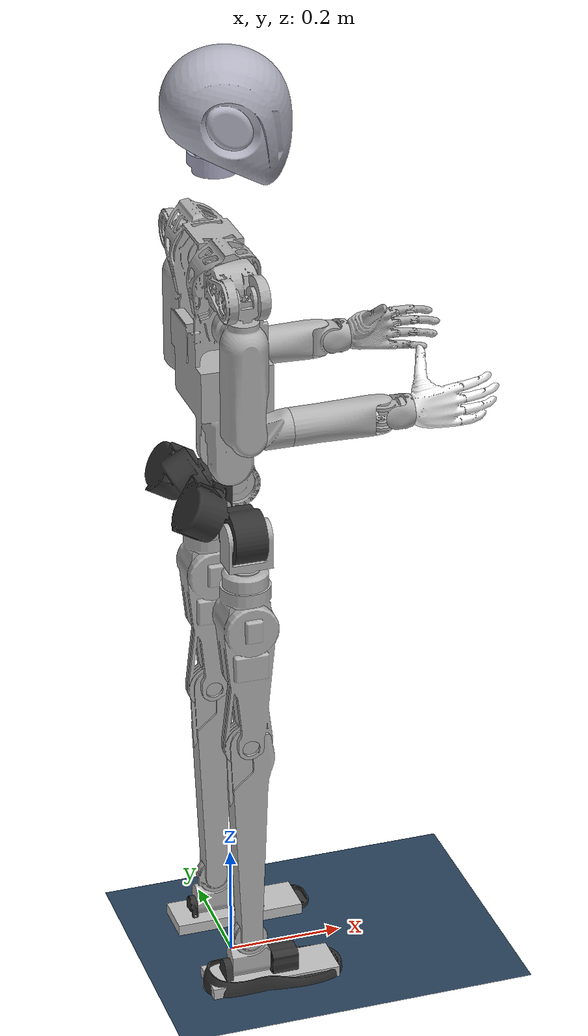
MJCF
<mujoco model="scene_f1">
  <compiler angle="radian" meshdir="./meshes/" autolimits="true"/>
  <default>
    <joint damping="0.05" armature="0.01" frictionloss="0.2"/>
  </default>

  <asset>
    <material name="silver" rgba="0.7 0.7 0.7 1"/>
    <material name="black" rgba="0.2 0.2 0.2 1"/>

    <mesh name="pelvis" file="pelvis.STL"/>
    <mesh name="left_hip_pitch_link" file="left_hip_pitch_link.STL"/>
    <mesh name="left_hip_roll_link" file="left_hip_roll_link.STL"/>
    <mesh name="left_hip_yaw_link" file="left_hip_yaw_link.STL"/>
    <mesh name="left_knee_link" file="left_knee_link.STL"/>
    <mesh name="left_ankle_pitch_link" file="left_ankle_pitch_link.STL"/>
    <mesh name="left_ankle_roll_link" file="left_ankle_roll_link.STL"/>
    <mesh name="right_hip_pitch_link" file="right_hip_pitch_link.STL"/>
    <mesh name="right_hip_roll_link" file="right_hip_roll_link.STL"/>
    <mesh name="right_hip_yaw_link" file="right_hip_yaw_link.STL"/>
    <mesh name="right_knee_link" file="right_knee_link.STL"/>
    <mesh name="right_ankle_pitch_link" file="right_ankle_pitch_link.STL"/>
    <mesh name="right_ankle_roll_link" file="right_ankle_roll_link.STL"/>
    <mesh name="waist_yaw_link" file="waist_yaw_link.STL"/>
    <mesh name="waist_roll_link" file="waist_roll_link.STL"/>
    <mesh name="torso_link" file="torso_link.STL"/>
    <mesh name="left_shoulder_pitch_link" file="left_shoulder_pitch_link.STL"/>
    <mesh name="left_shoulder_roll_link" file="left_shoulder_roll_link.STL"/>
    <mesh name="left_shoulder_yaw_link" file="left_shoulder_yaw_link.STL"/>
    <mesh name="left_elbow_link" file="left_elbow_link.STL"/>
    <mesh name="left_wrist_roll_link_v1_1" file="left_wrist_roll_link_v1_1.STL"/>
    <mesh name="left_wrist_yaw_link_v1_1" file="left_wrist_yaw_link_v1_1.STL"/>
    <mesh name="left_wrist_pitch_link_v1_1" file="left_wrist_pitch_link_v1_1.STL"/>
    <mesh name="left_hand_link" file="left_hand_link.STL"/>
    <mesh name="right_shoulder_pitch_link" file="right_shoulder_pitch_link.STL"/>
    <mesh name="right_shoulder_roll_link" file="right_shoulder_roll_link.STL"/>
    <mesh name="right_shoulder_yaw_link" file="right_shoulder_yaw_link.STL"/>
    <mesh name="right_elbow_link" file="right_elbow_link.STL"/>
    <mesh name="right_wrist_roll_link_v1_1" file="right_wrist_roll_link_v1_1.STL"/>
    <mesh name="right_wrist_yaw_link_v1_1" file="right_wrist_yaw_link_v1_1.STL"/>
    <mesh name="right_wrist_pitch_link_v1_1" file="right_wrist_pitch_link_v1_1.STL"/>
    <mesh name="right_hand_link" file="right_hand_link.STL"/>
    <mesh name="head_yaw_link" file="head_yaw_link.STL"/>
    <mesh name="head_pitch_link" file="head_pitch_link.STL"/>
  </asset>

  <worldbody>
    <body name="pelvis" pos="0 0 0.873">
      <site name="imu" size="0.01" pos="0.0 0.0 0.0" />

      <light pos="0 0 2" mode="trackcom"/>
      <camera name="tracking" pos="1.734 -1.135 .35" xyaxes="0.552 0.834 -0.000 -0.170 0.112 0.979" mode="trackcom"/>
      <inertial pos="1.227e-05 0 0.00175202" quat="0.707113 0.707071 -0.00603929 0.00224665" mass="1.923" diaginertia="0.00328643 0.00327877 0.00187875"/>
      <joint name="floating_base_joint" type="free" limited="false" actuatorfrclimited="false"/>
      <geom type="mesh" contype="0" conaffinity="0" group="1" density="0" rgba="0.2 0.2 0.2 1" mesh="pelvis"/>
      <site name="imu_in_pelvis" size="0.005" pos="0. 0 -0.055"/>
      <body name="left_hip_pitch_link" pos="0 0.0495 0">
        <inertial pos="-0.00059823 0.053979 -0.0042224" quat="0.652315 0.75755 -0.0242065 0.00423816" mass="1.04" diaginertia="0.00138575 0.00113626 0.000872142"/>
        <joint name="left_hip_pitch_joint" pos="0 0 0" axis="0 1 0" range="-2.3562 2.3562"/>
        <geom type="mesh" contype="0" conaffinity="0" group="1" density="0" rgba="0.2 0.2 0.2 1" mesh="left_hip_pitch_link"/>
        <body name="left_hip_roll_link" pos="0 0.0555 -0.005">
          <inertial pos="0.0043213 0 -0.027634" quat="0.408553 0.57731 0.577033 0.408449" mass="0.14" diaginertia="0.00018358 0.000141244 0.000101956"/>
          <joint name="left_hip_roll_joint" axis="1 0 0" range="-0.5236 1.5708" actuatorfrcrange="-87 87"/>
          <geom type="mesh" contype="0" conaffinity="0" group="1" density="0" rgba="0.7 0.7 0.7 1" mesh="left_hip_roll_link"/>
          <geom type="mesh" rgba="0.7 0.7 0.7 1" mesh="left_hip_roll_link"/>
          <body name="left_hip_yaw_link" pos="0 0 -0.0536">
            <inertial pos="0.00010121 1.383e-05 -0.102311" quat="0.99999 0.00375205 0.0025479 0.000511966" mass="2.275" diaginertia="0.0191971 0.018658 0.00224713"/>
            <joint name="left_hip_yaw_joint" pos="0 0 0" axis="0 0 1" range="-1.8326 1.8326" actuatorfrcrange="-87 87"/>
            <geom type="mesh" contype="0" conaffinity="0" group="1" density="0" rgba="0.7 0.7 0.7 1" mesh="left_hip_yaw_link"/>
            <geom type="mesh" rgba="0.7 0.7 0.7 1" mesh="left_hip_yaw_link"/>
            <body name="left_knee_link" pos="0 0 -0.3304">
              <inertial pos="0.00334882 -0.00032247 -0.149842" quat="0.698241 -0.0104039 -0.00666549 0.715757" mass="0.635" diaginertia="0.0111018 0.0110139 0.000311373"/>
              <joint name="left_knee_joint" pos="0 0 0" axis="0 1 0" range="-0.01745 2.3562" actuatorfrcrange="-120 120"/>
              <geom type="mesh" contype="0" conaffinity="0" group="1" density="0" rgba="0.7 0.7 0.7 1" mesh="left_knee_link"/>
              <geom type="mesh" rgba="0.7 0.7 0.7 1" mesh="left_knee_link"/>
              <body name="left_ankle_pitch_link" pos="0 0 -0.39">
                <inertial pos="0.0024178 -1.256e-05 -0.0238176" quat="0.704903 0.052882 0.0527757 0.705358" mass="0.22" diaginertia="0.00023561 0.000170507 9.99229e-05"/>
                <joint name="left_ankle_pitch_joint" pos="0 0 0" axis="0 1 0" range="-0.873 1.0472" actuatorfrcrange="-89 89"/>
                <geom type="mesh" contype="0" conaffinity="0" group="1" density="0" rgba="0.7 0.7 0.7 1" mesh="left_ankle_pitch_link"/>
                <geom type="mesh" rgba="0.7 0.7 0.7 1" mesh="left_ankle_pitch_link"/>
                <body name="left_ankle_roll_link" pos="0 0 -0.058">
                  <inertial pos="0.0510876 0.00023922 -0.00447269" quat="0 0.707107 0 0.707107" mass="0.411" diaginertia="0.00047916 0.00047226 9.993e-05"/>
                  <joint name="left_ankle_roll_joint" pos="0 0 0" axis="1 0 0" range="-0.5236 0.5236"/>
                  <geom type="mesh" contype="0" conaffinity="0" group="1" density="0" rgba="0.2 0.2 0.2 1" mesh="left_ankle_roll_link"/>
                  <geom name="l_foot_collision" type="box" size="0.115 0.039 0.01" pos="0.038 0 -0.025" rgba="0.75294 0.75294 0.75294 1" condim="3" />
                </body>
              </body>
            </body>
          </body>
        </body>
      </body>
      <body name="right_hip_pitch_link" pos="0 -0.0495 0">
        <inertial pos="-0.00059823 -0.053979 -0.0042224" quat="0.75755 0.652315 -0.00423816 0.0242065" mass="1.04" diaginertia="0.00138575 0.00113626 0.000872142"/>
        <joint name="right_hip_pitch_joint" pos="0 0 0" axis="0 1 0" range="-2.3562 2.3562" actuatorfrcrange="-75 75"/>
        <geom type="mesh" contype="0" conaffinity="0" group="1" density="0" rgba="0.2 0.2 0.2 1" mesh="right_hip_pitch_link"/>
        <geom type="mesh" rgba="0.2 0.2 0.2 1" mesh="right_hip_pitch_link"/>
        <body name="right_hip_roll_link" pos="0 -0.0555 -0.005">
          <inertial pos="0.0043213 0 -0.027634" quat="0.408553 0.57731 0.577033 0.408449" mass="0.14" diaginertia="0.00018358 0.000141244 0.000101956"/>
          <joint name="right_hip_roll_joint" pos="0 0 0" axis="1 0 0" range="-1.5708 0.5236" actuatorfrcrange="-87 87"/>
          <geom type="mesh" contype="0" conaffinity="0" group="1" density="0" rgba="0.7 0.7 0.7 1" mesh="right_hip_roll_link"/>
          <geom type="mesh" rgba="0.7 0.7 0.7 1" mesh="right_hip_roll_link"/>
          <body name="right_hip_yaw_link" pos="0 0 -0.0536">
            <inertial pos="0.00028095 -0.00037298 -0.102311" quat="0.999997 0.00155532 0.00134116 0.00120674" mass="2.275" diaginertia="0.0191961 0.0186572 0.00224772"/>
            <joint name="right_hip_yaw_joint" pos="0 0 0" axis="0 0 1" range="-1.8326 1.8326" actuatorfrcrange="-87 87"/>
            <geom type="mesh" contype="0" conaffinity="0" group="1" density="0" rgba="0.7 0.7 0.7 1" mesh="right_hip_yaw_link"/>
            <geom type="mesh" rgba="0.7 0.7 0.7 1" mesh="right_hip_yaw_link"/>
            <body name="right_knee_link" pos="0 0 -0.3304">
              <inertial pos="0.0033489 -0.00032248 -0.14984" quat="0.715839 -0.00666391 -0.0104045 0.698156" mass="0.635" diaginertia="0.0111013 0.0110142 0.000311373"/>
              <joint name="right_knee_joint" pos="0 0 0" axis="0 1 0" range="-0.01745 2.3562" actuatorfrcrange="-120 120"/>
              <geom type="mesh" contype="0" conaffinity="0" group="1" density="0" rgba="0.7 0.7 0.7 1" mesh="right_knee_link"/>
              <geom type="mesh" rgba="0.7 0.7 0.7 1" mesh="right_knee_link"/>
              <body name="right_ankle_pitch_link" pos="0 0 -0.39">
                <inertial pos="0.0024178 -1.257e-05 -0.023818" quat="0.704903 0.052882 0.0527757 0.705358" mass="0.22" diaginertia="0.00023561 0.000170507 9.99229e-05"/>
                <joint name="right_ankle_pitch_joint" pos="0 0 0" axis="0 1 0" range="-0.873 1.0472" actuatorfrcrange="-89 89"/>
                <geom type="mesh" contype="0" conaffinity="0" group="1" density="0" rgba="0.7 0.7 0.7 1" mesh="right_ankle_pitch_link"/>
                <geom type="mesh" rgba="0.7 0.7 0.7 1" mesh="right_ankle_pitch_link"/>
                <body name="right_ankle_roll_link" pos="0 0 -0.058">
                  <inertial pos="0.0510876 0.00023921 -0.00447269" quat="0 0.707107 0 0.707107" mass="0.411" diaginertia="0.00047916 0.00047226 9.993e-05"/>
                  <joint name="right_ankle_roll_joint" pos="0 0 0" axis="1 0 0" range="-0.5236 0.5236" actuatorfrcrange="-12 12"/>
                  <geom type="mesh" contype="0" conaffinity="0" group="1" density="0" rgba="0.2 0.2 0.2 1" mesh="right_ankle_roll_link"/>
                  <geom name="r_foot_collision" type="box" size="0.115 0.039 0.01" pos="0.038 0 -0.025" rgba="0.75294 0.75294 0.75294 1" condim="3" />
                </body>
              </body>
            </body>
          </body>
        </body>
      </body>
      <body name="waist_yaw_link" pos="0 0 0.0955">
        <inertial pos="-0.000168719 0 0.00494718" quat="0.705214 0.0517024 0.0517024 0.705214" mass="0.274" diaginertia="0.000141864 0.000115748 0.00010802"/>
        <joint name="waist_yaw_joint" pos="0 0 0" axis="0 0 1" range="-1.5708 1.5708" actuatorfrcrange="-87 87"/>
        <geom type="mesh" contype="0" conaffinity="0" group="1" density="0" rgba="0.7 0.7 0.7 1" mesh="waist_yaw_link"/>
        <body name="torso_link">

          <inertial pos="-0.00019931 0.00150681 0.185114" mass="9.609" diaginertia="0.121179 0.120199 0.021852"/>
          <joint name="waist_roll_joint" pos="0 0 0" axis="1 0 0" range="-0.5236 0.5236" actuatorfrcrange="-87 87"/>
          <geom type="mesh" contype="0" conaffinity="0" group="1" density="0" rgba="0.7 0.7 0.7 1" mesh="torso_link"/>
          <geom type="mesh" rgba="0.7 0.7 0.7 1" mesh="torso_link"/>
          <body name="left_shoulder_pitch_link" pos="-0.015 0.05635 0.342">
            <inertial pos="5.543e-05 0.0554533 5.429e-05" quat="0.500477 0.499362 -0.499832 0.500328" mass="1.277" diaginertia="0.00194002 0.00178135 0.00103975"/>
            <geom type="mesh" contype="0" conaffinity="0" group="1" density="0" rgba="0.7 0.7 0.7 1" mesh="left_shoulder_pitch_link"/>
            <body name="left_shoulder_roll_link" pos="0 0.1031 0">
              <inertial pos="0 -0.00015563 -0.00797243" quat="0.449914 0.545507 0.449914 0.545507" mass="0.229" diaginertia="7.05648e-05 6.60152e-05 5.784e-05"/>
              <geom type="mesh" contype="0" conaffinity="0" group="1" density="0" rgba="0.7 0.7 0.7 1" mesh="left_shoulder_roll_link"/>
              <body name="left_shoulder_yaw_link">
                <inertial pos="-7.8318e-05 0.001011 -0.12915" mass="1.194" diaginertia="0.00412845 0.00411827 0.00084103"/>
                <geom type="mesh" contype="0" conaffinity="0" group="1" density="0" rgba="0.7 0.7 0.7 1" mesh="left_shoulder_yaw_link"/>
                <geom type="mesh" rgba="0.7 0.7 0.7 1" mesh="left_shoulder_yaw_link"/>
                <body name="left_elbow_link" pos="0 0 -0.2295">
                  <inertial pos="0.0167741 0 -0.00133301" quat="0 0.684589 0 0.728929" mass="0.185" diaginertia="0.000124726 0.00011358 7.98035e-05"/>
                  <geom type="mesh" contype="0" conaffinity="0" group="1" density="0" rgba="0.7 0.7 0.7 1" mesh="left_elbow_link"/>
                  <geom type="mesh" rgba="0.7 0.7 0.7 1" mesh="left_elbow_link"/>
                  <body name="left_wrist_roll_link">
                    <inertial pos="0.0985386 -0.00025438 -0.00071846" quat="0.49661 0.497949 0.510134 0.495166" mass="1.372" diaginertia="0.00443163 0.00434654 0.000486748"/>
                    <geom type="mesh" contype="0" conaffinity="0" group="1" density="0" rgba="0.7 0.7 0.7 1" mesh="left_wrist_roll_link_v1_1"/>
                    <geom type="mesh" rgba="0.7 0.7 0.7 1" mesh="left_wrist_roll_link_v1_1"/>
                    <body name="left_wrist_yaw_link" pos="0.23 0 0">
                      <inertial pos="0.0075268 0 0" quat="0.5 0.5 -0.5 0.5" mass="0.042" diaginertia="1.443e-05 1.052e-05 7.83e-06"/>
                      <geom type="mesh" contype="0" conaffinity="0" group="1" density="0" rgba="0.7 0.7 0.7 1" mesh="left_wrist_yaw_link_v1_1"/>
                      <geom type="mesh" rgba="0.7 0.7 0.7 1" mesh="left_wrist_yaw_link_v1_1"/>
                      <body name="left_wrist_pitch_link" pos="0.021 0 0">
                        <inertial pos="0.0745833 -0.00635348 0.00761055" quat="0.678574 0.334153 0.560893 0.336567" mass="0.53" diaginertia="0.00218929 0.00185367 0.000486625"/>
                        <geom type="mesh" contype="0" conaffinity="0" group="1" density="0" rgba="0.7 0.7 0.7 1" mesh="left_wrist_pitch_link_v1_1"/>
                        <geom pos="0.016 -0.003 0" quat="1 0 0 0" type="mesh" contype="0" conaffinity="0" group="1" density="0" rgba="0.7 0.7 0.7 1" mesh="left_hand_link"/>

                      </body>
                    </body>
                  </body>
                </body>
              </body>
            </body>
          </body>
          <body name="right_shoulder_pitch_link" pos="-0.015 -0.05635 0.342">
            <inertial pos="0.00015543 -0.0554533 -5.429e-05" quat="0.500328 0.499832 -0.499362 0.500477" mass="1.277" diaginertia="0.00194002 0.00178135 0.00103975"/>
            <geom type="mesh" contype="0" conaffinity="0" group="1" density="0" rgba="0.7 0.7 0.7 1" mesh="right_shoulder_pitch_link"/>
            <body name="right_shoulder_roll_link" pos="0 -0.1031 0">
              <inertial pos="0 -0.00015563 -0.00797243" quat="0.449914 0.545507 0.449914 0.545507" mass="0.229" diaginertia="7.05648e-05 6.60152e-05 5.784e-05"/>
              <geom type="mesh" contype="0" conaffinity="0" group="1" density="0" rgba="0.7 0.7 0.7 1" mesh="right_shoulder_roll_link"/>
              <body name="right_shoulder_yaw_link">
                <inertial pos="-7.8318e-05 0.001011 -0.12915" mass="1.194" diaginertia="0.00412845 0.00411827 0.00084103"/>
                <geom type="mesh" contype="0" conaffinity="0" group="1" density="0" rgba="0.7 0.7 0.7 1" mesh="right_shoulder_yaw_link"/>
                <geom type="mesh" rgba="0.7 0.7 0.7 1" mesh="right_shoulder_yaw_link"/>
                <body name="right_elbow_link" pos="0 0 -0.2295">
                  <inertial pos="0.0167741 0 -0.00133301" quat="0 0.684589 0 0.728929" mass="0.185" diaginertia="0.000124726 0.00011358 7.98035e-05"/>
                  <geom type="mesh" contype="0" conaffinity="0" group="1" density="0" rgba="0.7 0.7 0.7 1" mesh="right_elbow_link"/>
                  <geom type="mesh" rgba="0.7 0.7 0.7 1" mesh="right_elbow_link"/>
                  <body name="right_wrist_roll_link" >
                    <inertial pos="0.0985386 -0.00025438 -0.00071846" quat="0.49661 0.497949 0.510134 0.495166" mass="1.372" diaginertia="0.00443163 0.00434654 0.000486748"/>
                    <geom type="mesh" contype="0" conaffinity="0" group="1" density="0" rgba="0.7 0.7 0.7 1" mesh="right_wrist_roll_link_v1_1"/>
                    <geom type="mesh" rgba="0.7 0.7 0.7 1" mesh="right_wrist_roll_link_v1_1"/>
                    <body name="right_wrist_yaw_link"  pos="0.23 0 0">
                      <inertial pos="0.0075268 0 0" quat="0.5 0.5 -0.5 0.5" mass="0.042" diaginertia="1.443e-05 1.052e-05 7.83e-06"/>
                      <geom type="mesh" contype="0" conaffinity="0" group="1" density="0" rgba="0.7 0.7 0.7 1" mesh="right_wrist_yaw_link_v1_1"/>
                      <geom type="mesh" rgba="0.7 0.7 0.7 1" mesh="right_wrist_yaw_link_v1_1"/>
                      <body name="right_wrist_pitch_link" pos="0.021 0 0">
                        <inertial pos="0.0745935 0.00622963 0.00761411" quat="0.335443 0.560268 0.335448 0.679009" mass="0.53" diaginertia="0.00219004 0.00185458 0.00048651"/>
                        <geom type="mesh" contype="0" conaffinity="0" group="1" density="0" rgba="0.7 0.7 0.7 1" mesh="right_wrist_pitch_link_v1_1"/>
                        <geom pos="0.016 0 0" quat="1 0 0 0" type="mesh" contype="0" conaffinity="0" group="1" density="0" rgba="1 1 1 1" mesh="right_hand_link"/>
                      </body>
                    </body>
                  </body>
                </body>
              </body>
            </body>
          </body>
          <body name="head_yaw_link" pos="-0.011 0 0.5218">
                    <inertial pos="-0.0115151 0 0.019677" quat="0.959901 0 -0.28034 0" mass="0.56" diaginertia="0.000485828 0.000458813 0.000216341"/>
                    <geom type="mesh" contype="0" conaffinity="0" group="1" density="0" rgba="0.7 0.7 0.8 1" mesh="head_yaw_link"/>
                    <geom type="mesh" rgba="0.7 0.7 0.8 1" mesh="head_yaw_link"/>
                    <body name="head_pitch_link" pos="-0.0295 0 0.0503">
                      <inertial pos="0.0474296 1.03862e-06 0.0192405" quat="0 0.856691 0 0.515831" mass="0.864" diaginertia="0.00488189 0.004848 0.00387314"/>
                      <geom type="mesh" contype="0" conaffinity="0" group="1" density="0" rgba="0.7 0.7 0.76 1" mesh="head_pitch_link"/>
                      <geom type="mesh" rgba="0.7 0.7 0.76 1" mesh="head_pitch_link"/>
                    </body>
                  </body>
        </body>
      </body>
    </body>
  </worldbody>

  <actuator>
    <motor name="left_hip_pitch" joint="left_hip_pitch_joint" ctrlrange="-88 88" />
    <motor name="left_hip_roll" joint="left_hip_roll_joint" ctrlrange="-88 88" />
    <motor name="left_hip_yaw" joint="left_hip_yaw_joint" ctrlrange="-88 88" />
    <motor name="left_knee" joint="left_knee_joint" ctrlrange="-88 88" />
    <motor name="left_ankle_pitch" joint="left_ankle_pitch_joint" ctrlrange="-50 50" />
    <motor name="left_ankle_roll" joint="left_ankle_roll_joint" ctrlrange="-50 50" />
    <motor name="right_hip_pitch" joint="right_hip_pitch_joint" ctrlrange="-88 88" />
    <motor name="right_hip_roll" joint="right_hip_roll_joint" ctrlrange="-88 88" />
    <motor name="right_hip_yaw" joint="right_hip_yaw_joint" ctrlrange="-88 88" />
    <motor name="right_knee" joint="right_knee_joint" ctrlrange="-88 88" />
    <motor name="right_ankle_pitch" joint="right_ankle_pitch_joint" ctrlrange="-25 25" />
    <motor name="right_ankle_roll" joint="right_ankle_roll_joint" ctrlrange="-25 25" />
    <motor name="waist_yaw" joint="waist_yaw_joint" ctrlrange="-75 75" />
    <motor name="waist_roll" joint="waist_roll_joint" ctrlrange="-75 75" />

  </actuator>

  <!-- setup scene -->
  <statistic center="1.0 0.7 1.0" extent="0.8"/>
  <visual>
    <headlight diffuse="0.6 0.6 0.6" ambient="0.1 0.1 0.1" specular="0.9 0.9 0.9"/>
    <rgba haze="0.15 0.25 0.35 1"/>
    <global azimuth="-140" elevation="-20"/>
  </visual>
  <asset>
    <texture type="skybox" builtin="flat" rgb1="0 0 0" rgb2="0 0 0" width="512" height="3072"/>
    <texture type="2d" name="groundplane" builtin="checker" mark="edge" rgb1="0.2 0.3 0.4" rgb2="0.1 0.2 0.3" markrgb="0.8 0.8 0.8" width="300" height="300"/>
    <material name="groundplane" texture="groundplane" texuniform="true" texrepeat="5 5" reflectance="0.2"/>
  </asset>
  <worldbody>
    <light pos="1 0 3.5" dir="0 0 -1" directional="true"/>
    <geom name="floor" size="0 0 0.05" type="plane" material="groundplane"/>
  </worldbody>
</mujoco>
